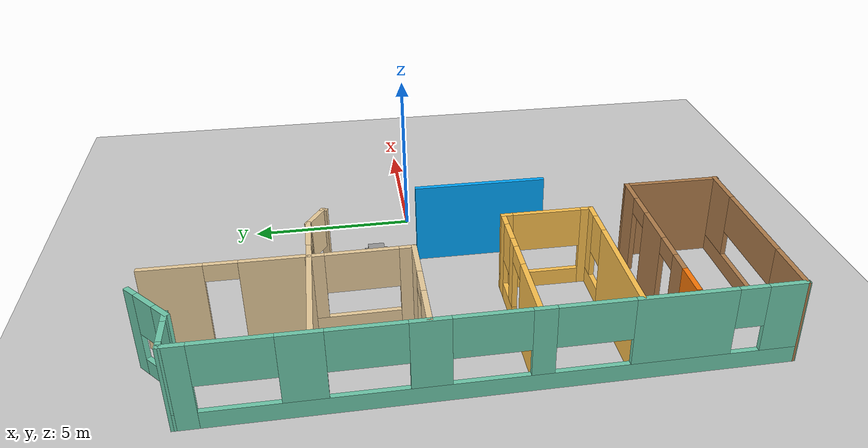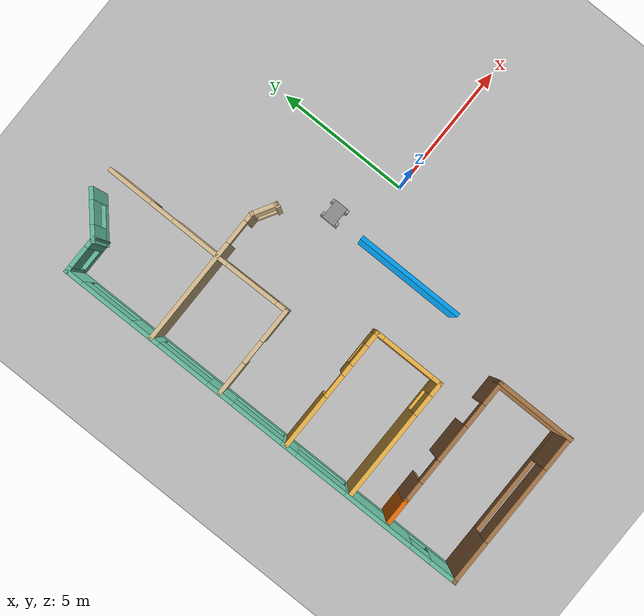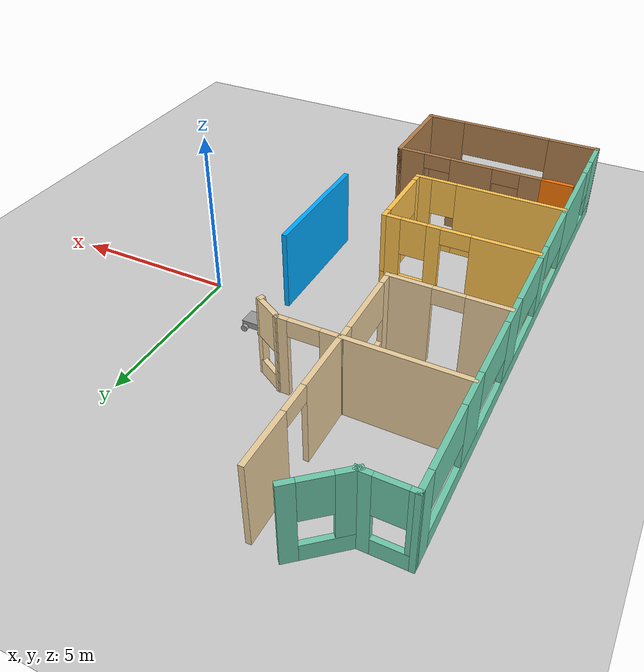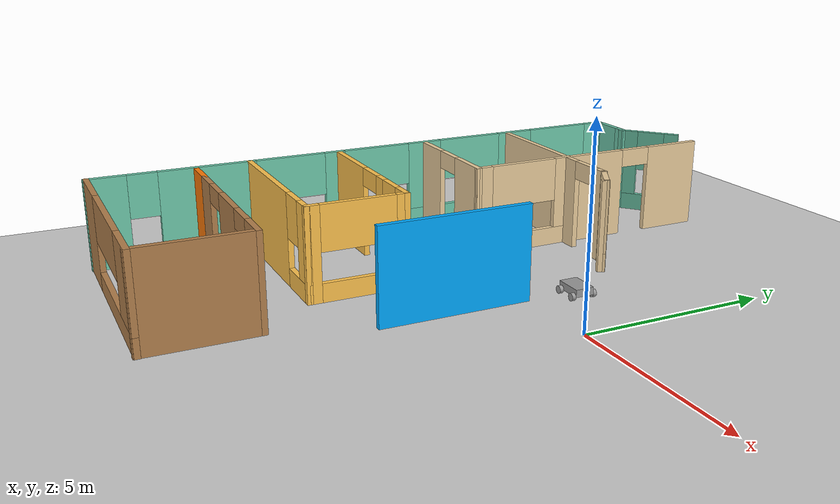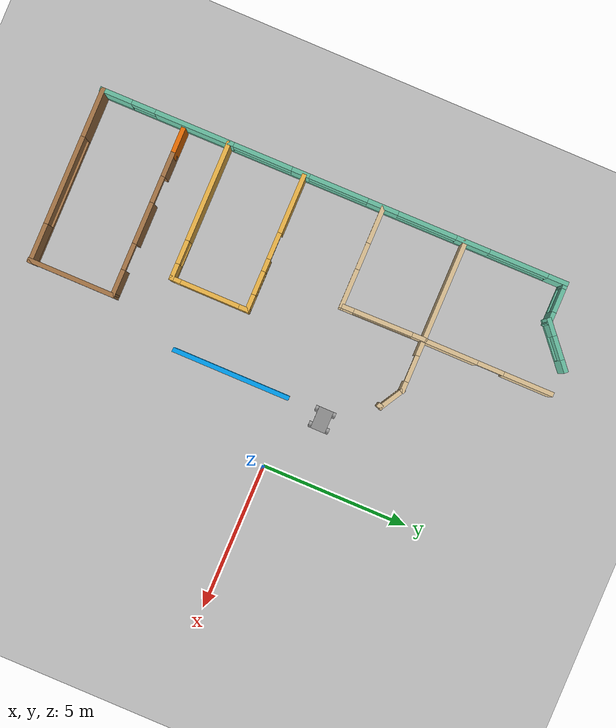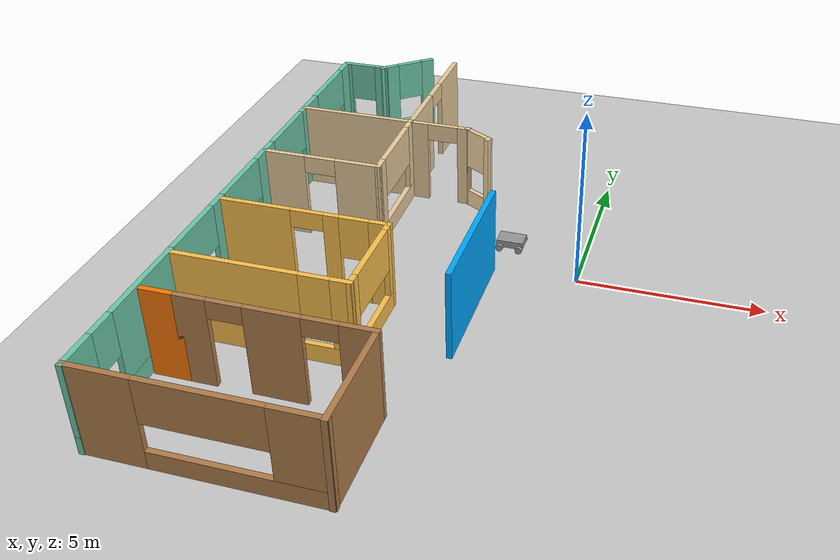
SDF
<sdf version="1.6">
 <world name="default">
  <model name="ground_plane">
   <static>1</static>
   <link name="link">
    <collision name="collision">
     <geometry><plane><normal>0 0 1</normal><size>100 100</size></plane></geometry>
     <surface><friction><ode><mu>100</mu><mu2>50</mu2></ode></friction></surface>
    </collision>
    <visual name="visual">
     <cast_shadows>0</cast_shadows>
     <geometry><plane><normal>0 0 1</normal><size>100 100</size></plane></geometry>
     <material>
      <script><uri>file://media/materials/scripts/gazebo.material</uri><name>Gazebo/Grey</name></script>
     </material>
    </visual>
   </link>
  </model>
  <model name="Building-1">
   <pose>-1.79482 -0.84337 0 0 -0 0</pose>
   <link name="Wall_101">
    <collision name="Wall_101_Collision">
     <geometry><box><size>1 0.15 2.5</size></box></geometry>
     <pose>0 0 1.25 0 -0 0</pose>
    </collision>
    <visual name="Wall_101_Visual">
     <pose>0 0 1.25 0 -0 0</pose>
     <geometry><box><size>1 0.15 2.5</size></box></geometry>
     <material>
      <script><uri>file://media/materials/scripts/gazebo.material</uri><name>Gazebo/Grey</name></script>
      <ambient>0.996078 0.47451 0.0196078 1</ambient>
     </material>
     <meta><layer>0</layer></meta>
    </visual>
    <pose>-6.64557 -5.66391 0 0 -0 0</pose>
   </link>
   <link name="Wall_55">
    <pose>-3.79556 -5.66391 0 0 -0 0</pose>
    <visual name="Wall_55_Visual_0">
     <pose>-2.08336 0 1.25 0 -0 0</pose>
     <geometry><box><size>0.833273 0.15 2.5</size></box></geometry>
     <material>
      <script><uri>file://media/materials/scripts/gazebo.material</uri><name>Gazebo/Wood</name></script>
      <ambient>0.996078 0.47451 0.0196078 1</ambient>
     </material>
     <meta><layer>0</layer></meta>
    </visual>
    <collision name="Wall_55_Collision_0">
     <geometry><box><size>0.833273 0.15 2.5</size></box></geometry>
     <pose>-2.08336 0 1.25 0 -0 0</pose>
    </collision>
    <visual name="Wall_55_Visual_1">
     <pose>-0.059292 0 1.25 0 -0 0</pose>
     <geometry><box><size>1.41487 0.15 2.5</size></box></geometry>
     <material>
      <script><uri>file://media/materials/scripts/gazebo.material</uri><name>Gazebo/Wood</name></script>
      <ambient>0.996078 0.47451 0.0196078 1</ambient>
     </material>
     <meta><layer>0</layer></meta>
    </visual>
    <collision name="Wall_55_Collision_1">
     <geometry><box><size>1.41487 0.15 2.5</size></box></geometry>
     <pose>-0.059292 0 1.25 0 -0 0</pose>
    </collision>
    <visual name="Wall_55_Visual_2">
     <pose>2.02407 0 1.25 0 -0 0</pose>
     <geometry><box><size>0.951857 0.15 2.5</size></box></geometry>
     <material>
      <script><uri>file://media/materials/scripts/gazebo.material</uri><name>Gazebo/Wood</name></script>
      <ambient>0.996078 0.47451 0.0196078 1</ambient>
     </material>
     <meta><layer>0</layer></meta>
    </visual>
    <collision name="Wall_55_Collision_2">
     <geometry><box><size>0.951857 0.15 2.5</size></box></geometry>
     <pose>2.02407 0 1.25 0 -0 0</pose>
    </collision>
    <visual name="Wall_55_Visual_3">
     <pose>-1.21673 0 2.25 0 -0 0</pose>
     <geometry><box><size>0.9 0.15 0.5</size></box></geometry>
     <material>
      <script><uri>file://media/materials/scripts/gazebo.material</uri><name>Gazebo/Wood</name></script>
      <ambient>0.996078 0.47451 0.0196078 1</ambient>
     </material>
     <meta><layer>0</layer></meta>
    </visual>
    <collision name="Wall_55_Collision_3">
     <geometry><box><size>0.9 0.15 0.5</size></box></geometry>
     <pose>-1.21673 0 2.25 0 -0 0</pose>
    </collision>
    <visual name="Wall_55_Visual_4">
     <pose>1.09814 0 2.25 0 -0 0</pose>
     <geometry><box><size>0.9 0.15 0.5</size></box></geometry>
     <material>
      <script><uri>file://media/materials/scripts/gazebo.material</uri><name>Gazebo/Wood</name></script>
      <ambient>0.996078 0.47451 0.0196078 1</ambient>
     </material>
     <meta><layer>0</layer></meta>
    </visual>
    <collision name="Wall_55_Collision_4">
     <geometry><box><size>0.9 0.15 0.5</size></box></geometry>
     <pose>1.09814 0 2.25 0 -0 0</pose>
    </collision>
   </link>
   <link name="Wall_56">
    <collision name="Wall_56_Collision">
     <geometry><box><size>3 0.15 2.5</size></box></geometry>
     <pose>0 0 1.25 0 -0 0</pose>
    </collision>
    <visual name="Wall_56_Visual">
     <pose>0 0 1.25 0 -0 0</pose>
     <geometry><box><size>3 0.15 2.5</size></box></geometry>
     <material>
      <script><uri>file://media/materials/scripts/gazebo.material</uri><name>Gazebo/Wood</name></script>
      <ambient>0.996078 0.47451 0.0196078 1</ambient>
     </material>
     <meta><layer>0</layer></meta>
    </visual>
    <pose>-1.37057 -7.08891 0 0 0 -1.5708</pose>
   </link>
   <link name="Wall_60">
    <pose>-5.41275 7.93742 0 0 0 -2.43304</pose>
    <visual name="Wall_60_Visual_0">
     <pose>-0.703208 0 1.25 0 -0 0</pose>
     <geometry><box><size>0.422171 0.15 2.5</size></box></geometry>
     <material>
      <script><uri>file://media/materials/scripts/gazebo.material</uri><name>Gazebo/Grey</name></script>
      <ambient>0.435294 0.796078 0.67451 1</ambient>
     </material>
     <meta><layer>0</layer></meta>
    </visual>
    <collision name="Wall_60_Collision_0">
     <geometry><box><size>0.422171 0.15 2.5</size></box></geometry>
     <pose>-0.703208 0 1.25 0 -0 0</pose>
    </collision>
    <visual name="Wall_60_Visual_1">
     <pose>0.211086 0 0.25 0 -0 0</pose>
     <geometry><box><size>1.40642 0.15 0.5</size></box></geometry>
     <material>
      <script><uri>file://media/materials/scripts/gazebo.material</uri><name>Gazebo/Grey</name></script>
      <ambient>0.435294 0.796078 0.67451 1</ambient>
     </material>
     <meta><layer>0</layer></meta>
    </visual>
    <collision name="Wall_60_Collision_1">
     <geometry><box><size>1.40642 0.15 0.5</size></box></geometry>
     <pose>0.211086 0 0.25 0 -0 0</pose>
    </collision>
    <visual name="Wall_60_Visual_2">
     <pose>0.611086 0 1.5 0 -0 0</pose>
     <geometry><box><size>0.606416 0.15 2</size></box></geometry>
     <material>
      <script><uri>file://media/materials/scripts/gazebo.material</uri><name>Gazebo/Grey</name></script>
      <ambient>0.435294 0.796078 0.67451 1</ambient>
     </material>
     <meta><layer>0</layer></meta>
    </visual>
    <collision name="Wall_60_Collision_2">
     <geometry><box><size>0.606416 0.15 2</size></box></geometry>
     <pose>0.611086 0 1.5 0 -0 0</pose>
    </collision>
    <visual name="Wall_60_Visual_3">
     <pose>-0.092122 0 1.9 0 -0 0</pose>
     <geometry><box><size>0.8 0.15 1.2</size></box></geometry>
     <material>
      <script><uri>file://media/materials/scripts/gazebo.material</uri><name>Gazebo/Grey</name></script>
      <ambient>0.435294 0.796078 0.67451 1</ambient>
     </material>
     <meta><layer>0</layer></meta>
    </visual>
    <collision name="Wall_60_Collision_3">
     <geometry><box><size>0.8 0.15 1.2</size></box></geometry>
     <pose>-0.092122 0 1.9 0 -0 0</pose>
    </collision>
   </link>
   <link name="Wall_65">
    <pose>-6.64959 7.42898 0 0 -0 3.14159</pose>
    <visual name="Wall_65_Visual_0">
     <pose>-0.53233 0 1.25 0 -0 0</pose>
     <geometry><box><size>0.43534 0.15 2.5</size></box></geometry>
     <material>
      <script><uri>file://media/materials/scripts/gazebo.material</uri><name>Gazebo/Grey</name></script>
      <ambient>0.435294 0.796078 0.67451 1</ambient>
     </material>
     <meta><layer>0</layer></meta>
    </visual>
    <collision name="Wall_65_Collision_0">
     <geometry><box><size>0.43534 0.15 2.5</size></box></geometry>
     <pose>-0.53233 0 1.25 0 -0 0</pose>
    </collision>
    <visual name="Wall_65_Visual_1">
     <pose>0.21767 0 0.25 0 -0 0</pose>
     <geometry><box><size>1.06466 0.15 0.5</size></box></geometry>
     <material>
      <script><uri>file://media/materials/scripts/gazebo.material</uri><name>Gazebo/Grey</name></script>
      <ambient>0.435294 0.796078 0.67451 1</ambient>
     </material>
     <meta><layer>0</layer></meta>
    </visual>
    <collision name="Wall_65_Collision_1">
     <geometry><box><size>1.06466 0.15 0.5</size></box></geometry>
     <pose>0.21767 0 0.25 0 -0 0</pose>
    </collision>
    <visual name="Wall_65_Visual_2">
     <pose>0.61767 0 1.5 0 -0 0</pose>
     <geometry><box><size>0.26466 0.15 2</size></box></geometry>
     <material>
      <script><uri>file://media/materials/scripts/gazebo.material</uri><name>Gazebo/Grey</name></script>
      <ambient>0.435294 0.796078 0.67451 1</ambient>
     </material>
     <meta><layer>0</layer></meta>
    </visual>
    <collision name="Wall_65_Collision_2">
     <geometry><box><size>0.26466 0.15 2</size></box></geometry>
     <pose>0.61767 0 1.5 0 -0 0</pose>
    </collision>
    <visual name="Wall_65_Visual_3">
     <pose>0.08534 0 1.9 0 -0 0</pose>
     <geometry><box><size>0.8 0.15 1.2</size></box></geometry>
     <material>
      <script><uri>file://media/materials/scripts/gazebo.material</uri><name>Gazebo/Grey</name></script>
      <ambient>0.435294 0.796078 0.67451 1</ambient>
     </material>
     <meta><layer>0</layer></meta>
    </visual>
    <collision name="Wall_65_Collision_3">
     <geometry><box><size>0.8 0.15 1.2</size></box></geometry>
     <pose>0.08534 0 1.9 0 -0 0</pose>
    </collision>
   </link>
   <link name="Wall_66">
    <pose>-7.28687 -0.542232 0 0 0 -1.56606</pose>
    <visual name="Wall_66_Visual_0">
     <pose>-7.70025 0 1.25 0 -0 0</pose>
     <geometry><box><size>0.692866 0.15 2.5</size></box></geometry>
     <material>
      <script><uri>file://media/materials/scripts/gazebo.material</uri><name>Gazebo/Grey</name></script>
      <ambient>0.435294 0.796078 0.67451 1</ambient>
     </material>
     <meta><layer>0</layer></meta>
    </visual>
    <collision name="Wall_66_Collision_0">
     <geometry><box><size>0.692866 0.15 2.5</size></box></geometry>
     <pose>-7.70025 0 1.25 0 -0 0</pose>
    </collision>
    <visual name="Wall_66_Visual_1">
     <pose>0.346433 0 0.25 0 -0 0</pose>
     <geometry><box><size>15.4005 0.15 0.5</size></box></geometry>
     <material>
      <script><uri>file://media/materials/scripts/gazebo.material</uri><name>Gazebo/Grey</name></script>
      <ambient>0.435294 0.796078 0.67451 1</ambient>
     </material>
     <meta><layer>0</layer></meta>
    </visual>
    <collision name="Wall_66_Collision_1">
     <geometry><box><size>15.4005 0.15 0.5</size></box></geometry>
     <pose>0.346433 0 0.25 0 -0 0</pose>
    </collision>
    <visual name="Wall_66_Visual_2">
     <pose>-4.78225 0 1.5 0 -0 0</pose>
     <geometry><box><size>1.14314 0.15 2</size></box></geometry>
     <material>
      <script><uri>file://media/materials/scripts/gazebo.material</uri><name>Gazebo/Grey</name></script>
      <ambient>0.435294 0.796078 0.67451 1</ambient>
     </material>
     <meta><layer>0</layer></meta>
    </visual>
    <collision name="Wall_66_Collision_2">
     <geometry><box><size>1.14314 0.15 2</size></box></geometry>
     <pose>-4.78225 0 1.5 0 -0 0</pose>
    </collision>
    <visual name="Wall_66_Visual_3">
     <pose>-1.6864 0 1.5 0 -0 0</pose>
     <geometry><box><size>1.04855 0.15 2</size></box></geometry>
     <material>
      <script><uri>file://media/materials/scripts/gazebo.material</uri><name>Gazebo/Grey</name></script>
      <ambient>0.435294 0.796078 0.67451 1</ambient>
     </material>
     <meta><layer>0</layer></meta>
    </visual>
    <collision name="Wall_66_Collision_3">
     <geometry><box><size>1.04855 0.15 2</size></box></geometry>
     <pose>-1.6864 0 1.5 0 -0 0</pose>
    </collision>
    <visual name="Wall_66_Visual_4">
     <pose>1.14316 0 1.5 0 -0 0</pose>
     <geometry><box><size>0.610584 0.15 2</size></box></geometry>
     <material>
      <script><uri>file://media/materials/scripts/gazebo.material</uri><name>Gazebo/Grey</name></script>
      <ambient>0.435294 0.796078 0.67451 1</ambient>
     </material>
     <meta><layer>0</layer></meta>
    </visual>
    <collision name="Wall_66_Collision_4">
     <geometry><box><size>0.610584 0.15 2</size></box></geometry>
     <pose>1.14316 0 1.5 0 -0 0</pose>
    </collision>
    <visual name="Wall_66_Visual_5">
     <pose>4.7972 0 1.5 0 -0 0</pose>
     <geometry><box><size>2.6975 0.15 2</size></box></geometry>
     <material>
      <script><uri>file://media/materials/scripts/gazebo.material</uri><name>Gazebo/Grey</name></script>
      <ambient>0.435294 0.796078 0.67451 1</ambient>
     </material>
     <meta><layer>0</layer></meta>
    </visual>
    <collision name="Wall_66_Collision_5">
     <geometry><box><size>2.6975 0.15 2</size></box></geometry>
     <pose>4.7972 0 1.5 0 -0 0</pose>
    </collision>
    <visual name="Wall_66_Visual_6">
     <pose>7.49632 0 1.5 0 -0 0</pose>
     <geometry><box><size>1.10073 0.15 2</size></box></geometry>
     <material>
      <script><uri>file://media/materials/scripts/gazebo.material</uri><name>Gazebo/Grey</name></script>
      <ambient>0.435294 0.796078 0.67451 1</ambient>
     </material>
     <meta><layer>0</layer></meta>
    </visual>
    <collision name="Wall_66_Collision_6">
     <geometry><box><size>1.10073 0.15 2</size></box></geometry>
     <pose>7.49632 0 1.5 0 -0 0</pose>
    </collision>
    <visual name="Wall_66_Visual_7">
     <pose>-6.35382 0 1.9 0 -0 0</pose>
     <geometry><box><size>2 0.15 1.2</size></box></geometry>
     <material>
      <script><uri>file://media/materials/scripts/gazebo.material</uri><name>Gazebo/Grey</name></script>
      <ambient>0.435294 0.796078 0.67451 1</ambient>
     </material>
     <meta><layer>0</layer></meta>
    </visual>
    <collision name="Wall_66_Collision_7">
     <geometry><box><size>2 0.15 1.2</size></box></geometry>
     <pose>-6.35382 0 1.9 0 -0 0</pose>
    </collision>
    <visual name="Wall_66_Visual_8">
     <pose>-3.21068 0 1.9 0 -0 0</pose>
     <geometry><box><size>2 0.15 1.2</size></box></geometry>
     <material>
      <script><uri>file://media/materials/scripts/gazebo.material</uri><name>Gazebo/Grey</name></script>
      <ambient>0.435294 0.796078 0.67451 1</ambient>
     </material>
     <meta><layer>0</layer></meta>
    </visual>
    <collision name="Wall_66_Collision_8">
     <geometry><box><size>2 0.15 1.2</size></box></geometry>
     <pose>-3.21068 0 1.9 0 -0 0</pose>
    </collision>
    <visual name="Wall_66_Visual_9">
     <pose>-0.162128 0 1.9 0 -0 0</pose>
     <geometry><box><size>2 0.15 1.2</size></box></geometry>
     <material>
      <script><uri>file://media/materials/scripts/gazebo.material</uri><name>Gazebo/Grey</name></script>
      <ambient>0.435294 0.796078 0.67451 1</ambient>
     </material>
     <meta><layer>0</layer></meta>
    </visual>
    <collision name="Wall_66_Collision_9">
     <geometry><box><size>2 0.15 1.2</size></box></geometry>
     <pose>-0.162128 0 1.9 0 -0 0</pose>
    </collision>
    <visual name="Wall_66_Visual_10">
     <pose>2.44846 0 1.9 0 -0 0</pose>
     <geometry><box><size>2 0.15 1.2</size></box></geometry>
     <material>
      <script><uri>file://media/materials/scripts/gazebo.material</uri><name>Gazebo/Grey</name></script>
      <ambient>0.435294 0.796078 0.67451 1</ambient>
     </material>
     <meta><layer>0</layer></meta>
    </visual>
    <collision name="Wall_66_Collision_10">
     <geometry><box><size>2 0.15 1.2</size></box></geometry>
     <pose>2.44846 0 1.9 0 -0 0</pose>
    </collision>
    <visual name="Wall_66_Visual_11">
     <pose>6.54595 0 1.9 0 -0 0</pose>
     <geometry><box><size>0.8 0.15 1.2</size></box></geometry>
     <material>
      <script><uri>file://media/materials/scripts/gazebo.material</uri><name>Gazebo/Grey</name></script>
      <ambient>0.435294 0.796078 0.67451 1</ambient>
     </material>
     <meta><layer>0</layer></meta>
    </visual>
    <collision name="Wall_66_Collision_11">
     <geometry><box><size>0.8 0.15 1.2</size></box></geometry>
     <pose>6.54595 0 1.9 0 -0 0</pose>
    </collision>
   </link>
   <link name="Wall_67">
    <pose>-4.30246 -8.49175 0 0 -0 0</pose>
    <visual name="Wall_67_Visual_0">
     <pose>-2.17925 0 1.25 0 -0 0</pose>
     <geometry><box><size>1.68488 0.15 2.5</size></box></geometry>
     <material>
      <script><uri>file://media/materials/scripts/gazebo.material</uri><name>Gazebo/Wood</name></script>
      <ambient>0.435294 0.796078 0.67451 1</ambient>
     </material>
     <meta><layer>0</layer></meta>
    </visual>
    <collision name="Wall_67_Collision_0">
     <geometry><box><size>1.68488 0.15 2.5</size></box></geometry>
     <pose>-2.17925 0 1.25 0 -0 0</pose>
    </collision>
    <visual name="Wall_67_Visual_1">
     <pose>0.842439 0 0.25 0 -0 0</pose>
     <geometry><box><size>4.3585 0.15 0.5</size></box></geometry>
     <material>
      <script><uri>file://media/materials/scripts/gazebo.material</uri><name>Gazebo/Wood</name></script>
      <ambient>0.435294 0.796078 0.67451 1</ambient>
     </material>
     <meta><layer>0</layer></meta>
    </visual>
    <collision name="Wall_67_Collision_1">
     <geometry><box><size>4.3585 0.15 0.5</size></box></geometry>
     <pose>0.842439 0 0.25 0 -0 0</pose>
    </collision>
    <visual name="Wall_67_Visual_2">
     <pose>2.34244 0 1.5 0 -0 0</pose>
     <geometry><box><size>1.3585 0.15 2</size></box></geometry>
     <material>
      <script><uri>file://media/materials/scripts/gazebo.material</uri><name>Gazebo/Wood</name></script>
      <ambient>0.435294 0.796078 0.67451 1</ambient>
     </material>
     <meta><layer>0</layer></meta>
    </visual>
    <collision name="Wall_67_Collision_2">
     <geometry><box><size>1.3585 0.15 2</size></box></geometry>
     <pose>2.34244 0 1.5 0 -0 0</pose>
    </collision>
    <visual name="Wall_67_Visual_3">
     <pose>0.163188 0 1.9 0 -0 0</pose>
     <geometry><box><size>3 0.15 1.2</size></box></geometry>
     <material>
      <script><uri>file://media/materials/scripts/gazebo.material</uri><name>Gazebo/Wood</name></script>
      <ambient>0.435294 0.796078 0.67451 1</ambient>
     </material>
     <meta><layer>0</layer></meta>
    </visual>
    <collision name="Wall_67_Collision_3">
     <geometry><box><size>3 0.15 1.2</size></box></geometry>
     <pose>0.163188 0 1.9 0 -0 0</pose>
    </collision>
   </link>
   <link name="Wall_71">
    <pose>-4.91996 -4.15514 0 0 0 -6.7e-05</pose>
    <visual name="Wall_71_Visual_0">
     <pose>-0.681713 0 1.25 0 -0 0</pose>
     <geometry><box><size>3.41204 0.15 2.5</size></box></geometry>
     <material>
      <script><uri>file://media/materials/scripts/gazebo.material</uri><name>Gazebo/Grey</name></script>
      <ambient>1 0.764706 0.305882 1</ambient>
     </material>
     <meta><layer>0</layer></meta>
    </visual>
    <collision name="Wall_71_Collision_0">
     <geometry><box><size>3.41204 0.15 2.5</size></box></geometry>
     <pose>-0.681713 0 1.25 0 -0 0</pose>
    </collision>
    <visual name="Wall_71_Visual_1">
     <pose>1.70602 0 0.25 0 -0 0</pose>
     <geometry><box><size>1.36343 0.15 0.5</size></box></geometry>
     <material>
      <script><uri>file://media/materials/scripts/gazebo.material</uri><name>Gazebo/Grey</name></script>
      <ambient>1 0.764706 0.305882 1</ambient>
     </material>
     <meta><layer>0</layer></meta>
    </visual>
    <collision name="Wall_71_Collision_1">
     <geometry><box><size>1.36343 0.15 0.5</size></box></geometry>
     <pose>1.70602 0 0.25 0 -0 0</pose>
    </collision>
    <visual name="Wall_71_Visual_2">
     <pose>2.10602 0 1.5 0 -0 0</pose>
     <geometry><box><size>0.563425 0.15 2</size></box></geometry>
     <material>
      <script><uri>file://media/materials/scripts/gazebo.material</uri><name>Gazebo/Grey</name></script>
      <ambient>1 0.764706 0.305882 1</ambient>
     </material>
     <meta><layer>0</layer></meta>
    </visual>
    <collision name="Wall_71_Collision_2">
     <geometry><box><size>0.563425 0.15 2</size></box></geometry>
     <pose>2.10602 0 1.5 0 -0 0</pose>
    </collision>
    <visual name="Wall_71_Visual_3">
     <pose>1.42431 0 1.9 0 -0 0</pose>
     <geometry><box><size>0.8 0.15 1.2</size></box></geometry>
     <material>
      <script><uri>file://media/materials/scripts/gazebo.material</uri><name>Gazebo/Grey</name></script>
      <ambient>1 0.764706 0.305882 1</ambient>
     </material>
     <meta><layer>0</layer></meta>
    </visual>
    <collision name="Wall_71_Collision_3">
     <geometry><box><size>0.8 0.15 1.2</size></box></geometry>
     <pose>1.42431 0 1.9 0 -0 0</pose>
    </collision>
   </link>
   <link name="Wall_72">
    <pose>-2.60723 -2.8553 0 0 -0 1.5708</pose>
    <visual name="Wall_72_Visual_0">
     <pose>-1.17814 0 1.25 0 -0 0</pose>
     <geometry><box><size>0.393718 0.15 2.5</size></box></geometry>
     <material>
      <script><uri>file://media/materials/scripts/gazebo.material</uri><name>Gazebo/Grey</name></script>
      <ambient>1 0.764706 0.305882 1</ambient>
     </material>
     <meta><layer>0</layer></meta>
    </visual>
    <collision name="Wall_72_Collision_0">
     <geometry><box><size>0.393718 0.15 2.5</size></box></geometry>
     <pose>-1.17814 0 1.25 0 -0 0</pose>
    </collision>
    <visual name="Wall_72_Visual_1">
     <pose>0.196859 0 0.25 0 -0 0</pose>
     <geometry><box><size>2.35628 0.15 0.5</size></box></geometry>
     <material>
      <script><uri>file://media/materials/scripts/gazebo.material</uri><name>Gazebo/Grey</name></script>
      <ambient>1 0.764706 0.305882 1</ambient>
     </material>
     <meta><layer>0</layer></meta>
    </visual>
    <collision name="Wall_72_Collision_1">
     <geometry><box><size>2.35628 0.15 0.5</size></box></geometry>
     <pose>0.196859 0 0.25 0 -0 0</pose>
    </collision>
    <visual name="Wall_72_Visual_2">
     <pose>1.19686 0 1.5 0 -0 0</pose>
     <geometry><box><size>0.356282 0.15 2</size></box></geometry>
     <material>
      <script><uri>file://media/materials/scripts/gazebo.material</uri><name>Gazebo/Grey</name></script>
      <ambient>1 0.764706 0.305882 1</ambient>
     </material>
     <meta><layer>0</layer></meta>
    </visual>
    <collision name="Wall_72_Collision_2">
     <geometry><box><size>0.356282 0.15 2</size></box></geometry>
     <pose>1.19686 0 1.5 0 -0 0</pose>
    </collision>
    <visual name="Wall_72_Visual_3">
     <pose>0.018718 0 1.9 0 -0 0</pose>
     <geometry><box><size>2 0.15 1.2</size></box></geometry>
     <material>
      <script><uri>file://media/materials/scripts/gazebo.material</uri><name>Gazebo/Grey</name></script>
      <ambient>1 0.764706 0.305882 1</ambient>
     </material>
     <meta><layer>0</layer></meta>
    </visual>
    <collision name="Wall_72_Collision_3">
     <geometry><box><size>2 0.15 1.2</size></box></geometry>
     <pose>0.018718 0 1.9 0 -0 0</pose>
    </collision>
   </link>
   <link name="Wall_73">
    <pose>-4.90723 -1.5553 0 0 -0 3.14159</pose>
    <visual name="Wall_73_Visual_0">
     <pose>-2.07496 0 1.25 0 -0 0</pose>
     <geometry><box><size>0.600078 0.15 2.5</size></box></geometry>
     <material>
      <script><uri>file://media/materials/scripts/gazebo.material</uri><name>Gazebo/Grey</name></script>
      <ambient>1 0.764706 0.305882 1</ambient>
     </material>
     <meta><layer>0</layer></meta>
    </visual>
    <collision name="Wall_73_Collision_0">
     <geometry><box><size>0.600078 0.15 2.5</size></box></geometry>
     <pose>-2.07496 0 1.25 0 -0 0</pose>
    </collision>
    <visual name="Wall_73_Visual_1">
     <pose>1.36329 0 1.25 0 -0 0</pose>
     <geometry><box><size>2.02342 0.15 2.5</size></box></geometry>
     <material>
      <script><uri>file://media/materials/scripts/gazebo.material</uri><name>Gazebo/Grey</name></script>
      <ambient>1 0.764706 0.305882 1</ambient>
     </material>
     <meta><layer>0</layer></meta>
    </visual>
    <collision name="Wall_73_Collision_1">
     <geometry><box><size>2.02342 0.15 2.5</size></box></geometry>
     <pose>1.36329 0 1.25 0 -0 0</pose>
    </collision>
    <visual name="Wall_73_Visual_2">
     <pose>-1.16167 0 0.25 0 -0 0</pose>
     <geometry><box><size>1.2265 0.15 0.5</size></box></geometry>
     <material>
      <script><uri>file://media/materials/scripts/gazebo.material</uri><name>Gazebo/Grey</name></script>
      <ambient>1 0.764706 0.305882 1</ambient>
     </material>
     <meta><layer>0</layer></meta>
    </visual>
    <collision name="Wall_73_Collision_2">
     <geometry><box><size>1.2265 0.15 0.5</size></box></geometry>
     <pose>-1.16167 0 0.25 0 -0 0</pose>
    </collision>
    <visual name="Wall_73_Visual_3">
     <pose>-0.761671 0 1.5 0 -0 0</pose>
     <geometry><box><size>0.426503 0.15 2</size></box></geometry>
     <material>
      <script><uri>file://media/materials/scripts/gazebo.material</uri><name>Gazebo/Grey</name></script>
      <ambient>1 0.764706 0.305882 1</ambient>
     </material>
     <meta><layer>0</layer></meta>
    </visual>
    <collision name="Wall_73_Collision_3">
     <geometry><box><size>0.426503 0.15 2</size></box></geometry>
     <pose>-0.761671 0 1.5 0 -0 0</pose>
    </collision>
    <visual name="Wall_73_Visual_4">
     <pose>-1.37492 0 1.9 0 -0 0</pose>
     <geometry><box><size>0.8 0.15 1.2</size></box></geometry>
     <material>
      <script><uri>file://media/materials/scripts/gazebo.material</uri><name>Gazebo/Grey</name></script>
      <ambient>1 0.764706 0.305882 1</ambient>
     </material>
     <meta><layer>0</layer></meta>
    </visual>
    <collision name="Wall_73_Collision_4">
     <geometry><box><size>0.8 0.15 1.2</size></box></geometry>
     <pose>-1.37492 0 1.9 0 -0 0</pose>
    </collision>
    <visual name="Wall_73_Visual_5">
     <pose>-0.098419 0 2.25 0 -0 0</pose>
     <geometry><box><size>0.9 0.15 0.5</size></box></geometry>
     <material>
      <script><uri>file://media/materials/scripts/gazebo.material</uri><name>Gazebo/Grey</name></script>
      <ambient>1 0.764706 0.305882 1</ambient>
     </material>
     <meta><layer>0</layer></meta>
    </visual>
    <collision name="Wall_73_Collision_5">
     <geometry><box><size>0.9 0.15 0.5</size></box></geometry>
     <pose>-0.098419 0 2.25 0 -0 0</pose>
    </collision>
   </link>
   <link name="Wall_75">
    <pose>-4.7159 3.98332 0 0 -0 0</pose>
    <visual name="Wall_75_Visual_0">
     <pose>-0.643066 0 1.25 0 -0 0</pose>
     <geometry><box><size>3.96387 0.15 2.5</size></box></geometry>
     <material>
      <script><uri>file://media/materials/scripts/gazebo.material</uri><name>Gazebo/Grey</name></script>
      <ambient>0.921569 0.807843 0.615686 1</ambient>
     </material>
     <meta><layer>0</layer></meta>
    </visual>
    <collision name="Wall_75_Collision_0">
     <geometry><box><size>3.96387 0.15 2.5</size></box></geometry>
     <pose>-0.643066 0 1.25 0 -0 0</pose>
    </collision>
    <visual name="Wall_75_Visual_1">
     <pose>2.43193 0 1.25 0 -0 0</pose>
     <geometry><box><size>0.386132 0.15 2.5</size></box></geometry>
     <material>
      <script><uri>file://media/materials/scripts/gazebo.material</uri><name>Gazebo/Grey</name></script>
      <ambient>0.921569 0.807843 0.615686 1</ambient>
     </material>
     <meta><layer>0</layer></meta>
    </visual>
    <collision name="Wall_75_Collision_1">
     <geometry><box><size>0.386132 0.15 2.5</size></box></geometry>
     <pose>2.43193 0 1.25 0 -0 0</pose>
    </collision>
    <visual name="Wall_75_Visual_2">
     <pose>1.78887 0 2.25 0 -0 0</pose>
     <geometry><box><size>0.9 0.15 0.5</size></box></geometry>
     <material>
      <script><uri>file://media/materials/scripts/gazebo.material</uri><name>Gazebo/Grey</name></script>
      <ambient>0.921569 0.807843 0.615686 1</ambient>
     </material>
     <meta><layer>0</layer></meta>
    </visual>
    <collision name="Wall_75_Collision_2">
     <geometry><box><size>0.9 0.15 0.5</size></box></geometry>
     <pose>1.78887 0 2.25 0 -0 0</pose>
    </collision>
   </link>
   <link name="Wall_76">
    <pose>-1.79784 3.77082 0 0 0 -0.523599</pose>
    <visual name="Wall_76_Visual_0">
     <pose>-0.433172 0 1.25 0 -0 0</pose>
     <geometry><box><size>0.133657 0.15 2.5</size></box></geometry>
     <material>
      <script><uri>file://media/materials/scripts/gazebo.material</uri><name>Gazebo/Grey</name></script>
      <ambient>0.921569 0.807843 0.615686 1</ambient>
     </material>
     <meta><layer>0</layer></meta>
    </visual>
    <collision name="Wall_76_Collision_0">
     <geometry><box><size>0.133657 0.15 2.5</size></box></geometry>
     <pose>-0.433172 0 1.25 0 -0 0</pose>
    </collision>
    <visual name="Wall_76_Visual_1">
     <pose>0.066828 0 0.25 0 -0 0</pose>
     <geometry><box><size>0.866343 0.15 0.5</size></box></geometry>
     <material>
      <script><uri>file://media/materials/scripts/gazebo.material</uri><name>Gazebo/Grey</name></script>
      <ambient>0.921569 0.807843 0.615686 1</ambient>
     </material>
     <meta><layer>0</layer></meta>
    </visual>
    <collision name="Wall_76_Collision_1">
     <geometry><box><size>0.866343 0.15 0.5</size></box></geometry>
     <pose>0.066828 0 0.25 0 -0 0</pose>
    </collision>
    <visual name="Wall_76_Visual_2">
     <pose>0.466828 0 1.5 0 -0 0</pose>
     <geometry><box><size>0.066343 0.15 2</size></box></geometry>
     <material>
      <script><uri>file://media/materials/scripts/gazebo.material</uri><name>Gazebo/Grey</name></script>
      <ambient>0.921569 0.807843 0.615686 1</ambient>
     </material>
     <meta><layer>0</layer></meta>
    </visual>
    <collision name="Wall_76_Collision_2">
     <geometry><box><size>0.066343 0.15 2</size></box></geometry>
     <pose>0.466828 0 1.5 0 -0 0</pose>
    </collision>
    <visual name="Wall_76_Visual_3">
     <pose>0.033657 0 1.9 0 -0 0</pose>
     <geometry><box><size>0.8 0.15 1.2</size></box></geometry>
     <material>
      <script><uri>file://media/materials/scripts/gazebo.material</uri><name>Gazebo/Grey</name></script>
      <ambient>0.921569 0.807843 0.615686 1</ambient>
     </material>
     <meta><layer>0</layer></meta>
    </visual>
    <collision name="Wall_76_Collision_3">
     <geometry><box><size>0.8 0.15 1.2</size></box></geometry>
     <pose>0.033657 0 1.9 0 -0 0</pose>
    </collision>
   </link>
   <link name="Wall_77">
    <collision name="Wall_77_Collision">
     <geometry><box><size>0.210855 0.15 2.5</size></box></geometry>
     <pose>0 0 1.25 0 -0 0</pose>
    </collision>
    <visual name="Wall_77_Visual">
     <pose>0 0 1.25 0 -0 0</pose>
     <geometry><box><size>0.210855 0.15 2.5</size></box></geometry>
     <material>
      <script><uri>file://media/materials/scripts/gazebo.material</uri><name>Gazebo/Grey</name></script>
      <ambient>0.921569 0.807843 0.615686 1</ambient>
     </material>
     <meta><layer>0</layer></meta>
    </visual>
    <pose>-1.43921 3.52939 0 0 0 -1.88591</pose>
   </link>
   <link name="Wall_82">
    <pose>-5.57207 1.16029 0 0 -0 0</pose>
    <visual name="Wall_82_Visual_0">
     <pose>-1.11598 0 1.25 0 -0 0</pose>
     <geometry><box><size>1.26803 0.15 2.5</size></box></geometry>
     <material>
      <script><uri>file://media/materials/scripts/gazebo.material</uri><name>Gazebo/Grey</name></script>
      <ambient>0.921569 0.807843 0.615686 1</ambient>
     </material>
     <meta><layer>0</layer></meta>
    </visual>
    <collision name="Wall_82_Collision_0">
     <geometry><box><size>1.26803 0.15 2.5</size></box></geometry>
     <pose>-1.11598 0 1.25 0 -0 0</pose>
    </collision>
    <visual name="Wall_82_Visual_1">
     <pose>1.08402 0 1.25 0 -0 0</pose>
     <geometry><box><size>1.33197 0.15 2.5</size></box></geometry>
     <material>
      <script><uri>file://media/materials/scripts/gazebo.material</uri><name>Gazebo/Grey</name></script>
      <ambient>0.921569 0.807843 0.615686 1</ambient>
     </material>
     <meta><layer>0</layer></meta>
    </visual>
    <collision name="Wall_82_Collision_1">
     <geometry><box><size>1.33197 0.15 2.5</size></box></geometry>
     <pose>1.08402 0 1.25 0 -0 0</pose>
    </collision>
    <visual name="Wall_82_Visual_2">
     <pose>-0.031967 0 2.25 0 -0 0</pose>
     <geometry><box><size>0.9 0.15 0.5</size></box></geometry>
     <material>
      <script><uri>file://media/materials/scripts/gazebo.material</uri><name>Gazebo/Grey</name></script>
      <ambient>0.921569 0.807843 0.615686 1</ambient>
     </material>
     <meta><layer>0</layer></meta>
    </visual>
    <collision name="Wall_82_Collision_2">
     <geometry><box><size>0.9 0.15 0.5</size></box></geometry>
     <pose>-0.031967 0 2.25 0 -0 0</pose>
    </collision>
   </link>
   <link name="Wall_83">
    <pose>-3.91593 2.58529 0 0 -0 1.58403</pose>
    <visual name="Wall_83_Visual_0">
     <pose>-1.25623 0 1.25 0 -0 0</pose>
     <geometry><box><size>0.487538 0.15 2.5</size></box></geometry>
     <material>
      <script><uri>file://media/materials/scripts/gazebo.material</uri><name>Gazebo/Grey</name></script>
      <ambient>0.921569 0.807843 0.615686 1</ambient>
     </material>
     <meta><layer>0</layer></meta>
    </visual>
    <collision name="Wall_83_Collision_0">
     <geometry><box><size>0.487538 0.15 2.5</size></box></geometry>
     <pose>-1.25623 0 1.25 0 -0 0</pose>
    </collision>
    <visual name="Wall_83_Visual_1">
     <pose>0.243769 0 0.25 0 -0 0</pose>
     <geometry><box><size>2.51246 0.15 0.5</size></box></geometry>
     <material>
      <script><uri>file://media/materials/scripts/gazebo.material</uri><name>Gazebo/Grey</name></script>
      <ambient>0.921569 0.807843 0.615686 1</ambient>
     </material>
     <meta><layer>0</layer></meta>
    </visual>
    <collision name="Wall_83_Collision_1">
     <geometry><box><size>2.51246 0.15 0.5</size></box></geometry>
     <pose>0.243769 0 0.25 0 -0 0</pose>
    </collision>
    <visual name="Wall_83_Visual_2">
     <pose>1.24377 0 1.5 0 -0 0</pose>
     <geometry><box><size>0.512462 0.15 2</size></box></geometry>
     <material>
      <script><uri>file://media/materials/scripts/gazebo.material</uri><name>Gazebo/Grey</name></script>
      <ambient>0.921569 0.807843 0.615686 1</ambient>
     </material>
     <meta><layer>0</layer></meta>
    </visual>
    <collision name="Wall_83_Collision_2">
     <geometry><box><size>0.512462 0.15 2</size></box></geometry>
     <pose>1.24377 0 1.5 0 -0 0</pose>
    </collision>
    <visual name="Wall_83_Visual_3">
     <pose>-0.012462 0 1.9 0 -0 0</pose>
     <geometry><box><size>2 0.15 1.2</size></box></geometry>
     <material>
      <script><uri>file://media/materials/scripts/gazebo.material</uri><name>Gazebo/Grey</name></script>
      <ambient>0.921569 0.807843 0.615686 1</ambient>
     </material>
     <meta><layer>0</layer></meta>
    </visual>
    <collision name="Wall_83_Collision_3">
     <geometry><box><size>2 0.15 1.2</size></box></geometry>
     <pose>-0.012462 0 1.9 0 -0 0</pose>
    </collision>
   </link>
   <link name="Wall_87">
    <pose>-3.91593 6.18529 0 0 -0 1.5708</pose>
    <visual name="Wall_87_Visual_0">
     <pose>-1.30363 0 1.25 0 -0 0</pose>
     <geometry><box><size>1.89274 0.15 2.5</size></box></geometry>
     <material>
      <script><uri>file://media/materials/scripts/gazebo.material</uri><name>Gazebo/Grey</name></script>
      <ambient>0.921569 0.807843 0.615686 1</ambient>
     </material>
     <meta><layer>0</layer></meta>
    </visual>
    <collision name="Wall_87_Collision_0">
     <geometry><box><size>1.89274 0.15 2.5</size></box></geometry>
     <pose>-1.30363 0 1.25 0 -0 0</pose>
    </collision>
    <visual name="Wall_87_Visual_1">
     <pose>1.39637 0 1.25 0 -0 0</pose>
     <geometry><box><size>1.70726 0.15 2.5</size></box></geometry>
     <material>
      <script><uri>file://media/materials/scripts/gazebo.material</uri><name>Gazebo/Grey</name></script>
      <ambient>0.921569 0.807843 0.615686 1</ambient>
     </material>
     <meta><layer>0</layer></meta>
    </visual>
    <collision name="Wall_87_Collision_1">
     <geometry><box><size>1.70726 0.15 2.5</size></box></geometry>
     <pose>1.39637 0 1.25 0 -0 0</pose>
    </collision>
    <visual name="Wall_87_Visual_2">
     <pose>0.092738 0 2.25 0 -0 0</pose>
     <geometry><box><size>0.9 0.15 0.5</size></box></geometry>
     <material>
      <script><uri>file://media/materials/scripts/gazebo.material</uri><name>Gazebo/Grey</name></script>
      <ambient>0.921569 0.807843 0.615686 1</ambient>
     </material>
     <meta><layer>0</layer></meta>
    </visual>
    <collision name="Wall_87_Collision_2">
     <geometry><box><size>0.9 0.15 0.5</size></box></geometry>
     <pose>0.092738 0 2.25 0 -0 0</pose>
    </collision>
   </link>
   <link name="Wall_90">
    <collision name="Wall_90_Collision">
     <geometry><box><size>4 0.15 2.5</size></box></geometry>
     <pose>0 0 1.25 0 -0 0</pose>
    </collision>
    <visual name="Wall_90_Visual">
     <pose>0 0 1.25 0 -0 0</pose>
     <geometry><box><size>4 0.15 2.5</size></box></geometry>
     <material>
      <script><uri>file://media/materials/scripts/gazebo.material</uri><name>Gazebo/Grey</name></script>
      <ambient>0 0.666667 1 1</ambient>
     </material>
     <meta><layer>0</layer></meta>
    </visual>
    <pose>-0.536163 -1.23779 0 0 0 -1.5708</pose>
   </link>
   <static>1</static>
  </model>
  <model name="rc_bot_0">
   <link name="link_0">
    <pose>0 0 0.079996 0 -0 0</pose>
    <inertial>
     <mass>1</mass>
     <inertia>
      <ixx>0.166667</ixx>
      <ixy>0</ixy>
      <ixz>0</ixz>
      <iyy>0.166667</iyy>
      <iyz>0</iyz>
      <izz>0.166667</izz>
     </inertia>
    </inertial>
    <visual name="visual">
     <geometry><box><size>0.75 0.5 0.2</size></box></geometry>
     <material>
      <lighting>1</lighting>
      <script><uri>file://media/materials/scripts/gazebo.material</uri><name>Gazebo/Grey</name></script>
      <shader type="pixel"><normal_map>__default__</normal_map></shader>
      <ambient>0.3 0.3 0.3 1</ambient>
      <diffuse>0.7 0.7 0.7 1</diffuse>
      <specular>0.01 0.01 0.01 1</specular>
      <emissive>0 0 0 1</emissive>
     </material>
    </visual>
    <collision name="collision">
     <geometry><box><size>0.75 0.5 0.2</size></box></geometry>
     <surface>
      <friction>
       <ode><mu>1</mu><mu2>1</mu2><fdir1>0 0 0</fdir1><slip1>0</slip1><slip2>0</slip2></ode>
       <torsional>
        <coefficient>1</coefficient>
        <patch_radius>0</patch_radius>
        <surface_radius>0</surface_radius>
        <use_patch_radius>1</use_patch_radius>
        <ode><slip>0</slip></ode>
       </torsional>
      </friction>
      <bounce><restitution_coefficient>0</restitution_coefficient><threshold>1e+06</threshold></bounce>
      <contact>
       <collide_without_contact>0</collide_without_contact>
       <collide_without_contact_bitmask>1</collide_without_contact_bitmask>
       <collide_bitmask>1</collide_bitmask>
       <ode>
        <soft_cfm>0</soft_cfm>
        <soft_erp>0.2</soft_erp>
        <kp>1e+13</kp>
        <kd>1</kd>
        <max_vel>0.01</max_vel>
        <min_depth>0</min_depth>
       </ode>
       <bullet>
        <split_impulse>1</split_impulse>
        <split_impulse_penetration_threshold>-0.01</split_impulse_penetration_threshold>
        <soft_cfm>0</soft_cfm>
        <soft_erp>0.2</soft_erp>
        <kp>1e+13</kp>
        <kd>1</kd>
       </bullet>
      </contact>
     </surface>
    </collision>
   </link>
   <link name="link_1_clone_clone_0">
    <pose>0.275 0.30001 -0.019999 1.5707 -0 0</pose>
    <inertial>
     <mass>1</mass>
     <inertia><ixx>0.145833</ixx><ixy>0</ixy><ixz>0</ixz><iyy>0.145833</iyy><iyz>0</iyz><izz>0.125</izz></inertia>
    </inertial>
    <visual name="visual">
     <geometry><cylinder><radius>0.1</radius><length>0.1</length></cylinder></geometry>
     <material>
      <lighting>1</lighting>
      <script><uri>file://media/materials/scripts/gazebo.material</uri><name>Gazebo/Grey</name></script>
      <shader type="pixel"><normal_map>__default__</normal_map></shader>
      <ambient>0.3 0.3 0.3 1</ambient>
      <diffuse>0.7 0.7 0.7 1</diffuse>
      <specular>0.01 0.01 0.01 1</specular>
      <emissive>0 0 0 1</emissive>
     </material>
    </visual>
    <collision name="collision">
     <geometry><cylinder><radius>0.1</radius><length>0.1</length></cylinder></geometry>
     <surface>
      <friction>
       <ode><mu>1</mu><mu2>1</mu2><fdir1>0 0 0</fdir1><slip1>0</slip1><slip2>0</slip2></ode>
       <torsional>
        <coefficient>1</coefficient>
        <patch_radius>0</patch_radius>
        <surface_radius>0</surface_radius>
        <use_patch_radius>1</use_patch_radius>
        <ode><slip>0</slip></ode>
       </torsional>
      </friction>
      <bounce><restitution_coefficient>0</restitution_coefficient><threshold>1e+06</threshold></bounce>
      <contact>
       <collide_without_contact>0</collide_without_contact>
       <collide_without_contact_bitmask>1</collide_without_contact_bitmask>
       <collide_bitmask>1</collide_bitmask>
       <ode>
        <soft_cfm>0</soft_cfm>
        <soft_erp>0.2</soft_erp>
        <kp>1e+13</kp>
        <kd>1</kd>
        <max_vel>0.01</max_vel>
        <min_depth>0</min_depth>
       </ode>
       <bullet>
        <split_impulse>1</split_impulse>
        <split_impulse_penetration_threshold>-0.01</split_impulse_penetration_threshold>
        <soft_cfm>0</soft_cfm>
        <soft_erp>0.2</soft_erp>
        <kp>1e+13</kp>
        <kd>1</kd>
       </bullet>
      </contact>
     </surface>
    </collision>
   </link>
   <link name="link_1_clone_clone_0_clone">
    <pose>-0.275 0.30001 -0.019999 1.5707 -0 0</pose>
    <inertial>
     <mass>1</mass>
     <inertia><ixx>0.145833</ixx><ixy>0</ixy><ixz>0</ixz><iyy>0.145833</iyy><iyz>0</iyz><izz>0.125</izz></inertia>
    </inertial>
    <visual name="visual">
     <geometry><cylinder><radius>0.1</radius><length>0.1</length></cylinder></geometry>
     <material>
      <lighting>1</lighting>
      <script><uri>file://media/materials/scripts/gazebo.material</uri><name>Gazebo/Grey</name></script>
      <shader type="pixel"><normal_map>__default__</normal_map></shader>
      <ambient>0.3 0.3 0.3 1</ambient>
      <diffuse>0.7 0.7 0.7 1</diffuse>
      <specular>0.01 0.01 0.01 1</specular>
      <emissive>0 0 0 1</emissive>
     </material>
    </visual>
    <collision name="collision">
     <geometry><cylinder><radius>0.1</radius><length>0.1</length></cylinder></geometry>
     <surface>
      <friction>
       <ode><mu>1</mu><mu2>1</mu2><fdir1>0 0 0</fdir1><slip1>0</slip1><slip2>0</slip2></ode>
       <torsional>
        <coefficient>1</coefficient>
        <patch_radius>0</patch_radius>
        <surface_radius>0</surface_radius>
        <use_patch_radius>1</use_patch_radius>
        <ode><slip>0</slip></ode>
       </torsional>
      </friction>
      <bounce><restitution_coefficient>0</restitution_coefficient><threshold>1e+06</threshold></bounce>
      <contact>
       <collide_without_contact>0</collide_without_contact>
       <collide_without_contact_bitmask>1</collide_without_contact_bitmask>
       <collide_bitmask>1</collide_bitmask>
       <ode>
        <soft_cfm>0</soft_cfm>
        <soft_erp>0.2</soft_erp>
        <kp>1e+13</kp>
        <kd>1</kd>
        <max_vel>0.01</max_vel>
        <min_depth>0</min_depth>
       </ode>
       <bullet>
        <split_impulse>1</split_impulse>
        <split_impulse_penetration_threshold>-0.01</split_impulse_penetration_threshold>
        <soft_cfm>0</soft_cfm>
        <soft_erp>0.2</soft_erp>
        <kp>1e+13</kp>
        <kd>1</kd>
       </bullet>
      </contact>
     </surface>
    </collision>
   </link>
   <link name="link_1_clone_clone_0_clone_0">
    <pose>0.275 -0.30001 -0.019999 1.5707 -0 0</pose>
    <inertial>
     <mass>1</mass>
     <inertia><ixx>0.145833</ixx><ixy>0</ixy><ixz>0</ixz><iyy>0.145833</iyy><iyz>0</iyz><izz>0.125</izz></inertia>
    </inertial>
    <visual name="visual">
     <geometry><cylinder><radius>0.1</radius><length>0.1</length></cylinder></geometry>
     <material>
      <lighting>1</lighting>
      <script><uri>file://media/materials/scripts/gazebo.material</uri><name>Gazebo/Grey</name></script>
      <shader type="pixel"><normal_map>__default__</normal_map></shader>
      <ambient>0.3 0.3 0.3 1</ambient>
      <diffuse>0.7 0.7 0.7 1</diffuse>
      <specular>0.01 0.01 0.01 1</specular>
      <emissive>0 0 0 1</emissive>
     </material>
    </visual>
    <collision name="collision">
     <geometry><cylinder><radius>0.1</radius><length>0.1</length></cylinder></geometry>
     <surface>
      <friction>
       <ode><mu>1</mu><mu2>1</mu2><fdir1>0 0 0</fdir1><slip1>0</slip1><slip2>0</slip2></ode>
       <torsional>
        <coefficient>1</coefficient>
        <patch_radius>0</patch_radius>
        <surface_radius>0</surface_radius>
        <use_patch_radius>1</use_patch_radius>
        <ode><slip>0</slip></ode>
       </torsional>
      </friction>
      <bounce><restitution_coefficient>0</restitution_coefficient><threshold>1e+06</threshold></bounce>
      <contact>
       <collide_without_contact>0</collide_without_contact>
       <collide_without_contact_bitmask>1</collide_without_contact_bitmask>
       <collide_bitmask>1</collide_bitmask>
       <ode>
        <soft_cfm>0</soft_cfm>
        <soft_erp>0.2</soft_erp>
        <kp>1e+13</kp>
        <kd>1</kd>
        <max_vel>0.01</max_vel>
        <min_depth>0</min_depth>
       </ode>
       <bullet>
        <split_impulse>1</split_impulse>
        <split_impulse_penetration_threshold>-0.01</split_impulse_penetration_threshold>
        <soft_cfm>0</soft_cfm>
        <soft_erp>0.2</soft_erp>
        <kp>1e+13</kp>
        <kd>1</kd>
       </bullet>
      </contact>
     </surface>
    </collision>
   </link>
   <link name="link_1_clone_clone_0_clone_1">
    <pose>-0.275 -0.30001 -0.019999 1.5707 -0 0</pose>
    <inertial>
     <mass>1</mass>
     <inertia><ixx>0.145833</ixx><ixy>0</ixy><ixz>0</ixz><iyy>0.145833</iyy><iyz>0</iyz><izz>0.125</izz></inertia>
    </inertial>
    <visual name="visual">
     <geometry><cylinder><radius>0.1</radius><length>0.1</length></cylinder></geometry>
     <material>
      <lighting>1</lighting>
      <script><uri>file://media/materials/scripts/gazebo.material</uri><name>Gazebo/Grey</name></script>
      <shader type="pixel"><normal_map>__default__</normal_map></shader>
      <ambient>0.3 0.3 0.3 1</ambient>
      <diffuse>0.7 0.7 0.7 1</diffuse>
      <specular>0.01 0.01 0.01 1</specular>
      <emissive>0 0 0 1</emissive>
     </material>
    </visual>
    <collision name="collision">
     <geometry><cylinder><radius>0.1</radius><length>0.1</length></cylinder></geometry>
     <surface>
      <friction>
       <ode><mu>1</mu><mu2>1</mu2><fdir1>0 0 0</fdir1><slip1>0</slip1><slip2>0</slip2></ode>
       <torsional>
        <coefficient>1</coefficient>
        <patch_radius>0</patch_radius>
        <surface_radius>0</surface_radius>
        <use_patch_radius>1</use_patch_radius>
        <ode><slip>0</slip></ode>
       </torsional>
      </friction>
      <bounce><restitution_coefficient>0</restitution_coefficient><threshold>1e+06</threshold></bounce>
      <contact>
       <collide_without_contact>0</collide_without_contact>
       <collide_without_contact_bitmask>1</collide_without_contact_bitmask>
       <collide_bitmask>1</collide_bitmask>
       <ode>
        <soft_cfm>0</soft_cfm>
        <soft_erp>0.2</soft_erp>
        <kp>1e+13</kp>
        <kd>1</kd>
        <max_vel>0.01</max_vel>
        <min_depth>0</min_depth>
       </ode>
       <bullet>
        <split_impulse>1</split_impulse>
        <split_impulse_penetration_threshold>-0.01</split_impulse_penetration_threshold>
        <soft_cfm>0</soft_cfm>
        <soft_erp>0.2</soft_erp>
        <kp>1e+13</kp>
        <kd>1</kd>
       </bullet>
      </contact>
     </surface>
    </collision>
   </link>
   <joint name="link_0_JOINT_0" type="revolute">
    <parent>link_0</parent>
    <child>link_1_clone_clone_0</child>
    <axis>
     <xyz>0 0 1</xyz>
     <use_parent_model_frame>0</use_parent_model_frame>
     <limit>
      <lower>-1.79769e+308</lower>
      <upper>1.79769e+308</upper>
      <effort>-1</effort>
      <velocity>-1</velocity>
     </limit>
     <dynamics>
      <spring_reference>0</spring_reference>
      <spring_stiffness>0</spring_stiffness>
      <damping>0</damping>
      <friction>0</friction>
     </dynamics>
    </axis>
    <physics>
     <ode><limit><cfm>0</cfm><erp>0.2</erp></limit><suspension><cfm>0</cfm><erp>0.2</erp></suspension></ode>
    </physics>
   </joint>
   <joint name="link_0_JOINT_3" type="revolute">
    <parent>link_0</parent>
    <child>link_1_clone_clone_0_clone</child>
    <axis>
     <xyz>0 0 1</xyz>
     <use_parent_model_frame>0</use_parent_model_frame>
     <limit>
      <lower>-1.79769e+308</lower>
      <upper>1.79769e+308</upper>
      <effort>-1</effort>
      <velocity>-1</velocity>
     </limit>
     <dynamics>
      <spring_reference>0</spring_reference>
      <spring_stiffness>0</spring_stiffness>
      <damping>0</damping>
     </dynamics>
    </axis>
    <physics>
     <ode><limit><cfm>0</cfm><erp>0.2</erp></limit><suspension><cfm>0</cfm><erp>0.2</erp></suspension></ode>
    </physics>
   </joint>
   <joint name="link_0_JOINT_4" type="revolute">
    <parent>link_0</parent>
    <child>link_1_clone_clone_0_clone_0</child>
    <axis>
     <xyz>0 0 1</xyz>
     <use_parent_model_frame>0</use_parent_model_frame>
     <limit>
      <lower>-1.79769e+308</lower>
      <upper>1.79769e+308</upper>
      <effort>-1</effort>
      <velocity>-1</velocity>
     </limit>
     <dynamics>
      <spring_reference>0</spring_reference>
      <spring_stiffness>0</spring_stiffness>
      <damping>0</damping>
     </dynamics>
    </axis>
    <physics>
     <ode><limit><cfm>0</cfm><erp>0.2</erp></limit><suspension><cfm>0</cfm><erp>0.2</erp></suspension></ode>
    </physics>
   </joint>
   <joint name="link_0_JOINT_5" type="revolute">
    <parent>link_0</parent>
    <child>link_1_clone_clone_0_clone_1</child>
    <axis>
     <xyz>0 0 1</xyz>
     <use_parent_model_frame>0</use_parent_model_frame>
     <limit>
      <lower>-1.79769e+308</lower>
      <upper>1.79769e+308</upper>
      <effort>-1</effort>
      <velocity>-1</velocity>
     </limit>
     <dynamics>
      <spring_reference>0</spring_reference>
      <spring_stiffness>0</spring_stiffness>
      <damping>0</damping>
     </dynamics>
    </axis>
    <physics>
     <ode><limit><cfm>0</cfm><erp>0.2</erp></limit><suspension><cfm>0</cfm><erp>0.2</erp></suspension></ode>
    </physics>
   </joint>
   <static>0</static>
   <pose>-2.10215 1.17134 0.120002 5e-06 1e-05 -0.000911</pose>
  </model>
 </world>
</sdf>
